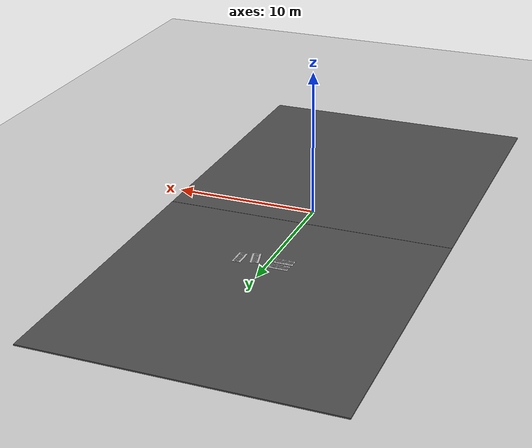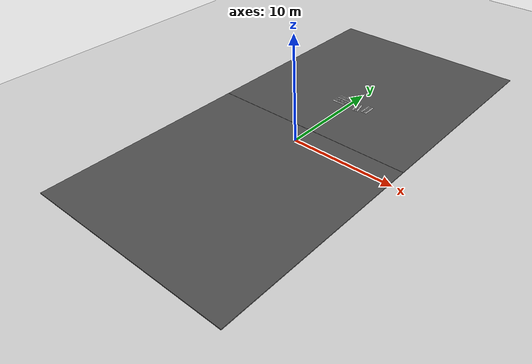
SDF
<sdf version="1.6">
 <world name="default">
  <model name="ground_plane">
   <static>1</static>
   <link name="link">
    <collision name="collision">
     <geometry><plane><normal>0 0 1</normal><size>100 100</size></plane></geometry>
     <surface>
      <contact><collide_bitmask>65535</collide_bitmask></contact>
      <friction><ode><mu>100</mu><mu2>50</mu2></ode></friction>
     </surface>
    </collision>
    <visual name="visual">
     <cast_shadows>0</cast_shadows>
     <geometry><plane><normal>0 0 1</normal><size>100 100</size></plane></geometry>
     <material>
      <script><uri>file://media/materials/scripts/gazebo.material</uri><name>Gazebo/Grey</name></script>
     </material>
    </visual>
   </link>
  </model>
  <model name="frc2016_roughterrain_clone_clone_10_clone_1">
   <static>1</static>
   <link name="link">
    <visual name="platform">
     <pose>0 0 0.08269 0 -0 0</pose>
     <geometry><box><size>1.27 0.5969 0.003175</size></box></geometry>
    </visual>
    <collision name="platform">
     <pose>0 0 0.08269 0 -0 0</pose>
     <geometry><box><size>1.27 0.5969 0.003175</size></box></geometry>
    </collision>
    <visual name="row1_block1_sm">
     <pose>0.51435 0.1143 0.09698 0 -0 0</pose>
     <geometry><box><size>0.0762 0.0762 0.0254</size></box></geometry>
    </visual>
    <collision name="row1_block1_sm">
     <pose>0.51435 0.1143 0.09698 0 -0 0</pose>
     <geometry><box><size>0.0762 0.0762 0.0254</size></box></geometry>
    </collision>
    <visual name="row1_block2_lg">
     <pose>0.40005 0.1143 0.12238 0 -0 0</pose>
     <geometry><box><size>0.0762 0.0762 0.0762</size></box></geometry>
    </visual>
    <collision name="row1_block2_lg">
     <pose>0.40005 0.1143 0.12238 0 -0 0</pose>
     <geometry><box><size>0.0762 0.0762 0.0762</size></box></geometry>
    </collision>
    <visual name="row1_block3_md">
     <pose>0.28575 0.1143 0.10968 0 -0 0</pose>
     <geometry><box><size>0.0762 0.0762 0.0508</size></box></geometry>
    </visual>
    <collision name="row1_block3_md">
     <pose>0.28575 0.1143 0.10968 0 -0 0</pose>
     <geometry><box><size>0.0762 0.0762 0.0508</size></box></geometry>
    </collision>
    <visual name="row1_block4_sm">
     <pose>0.17145 0.1143 0.09698 0 -0 0</pose>
     <geometry><box><size>0.0762 0.0762 0.0254</size></box></geometry>
    </visual>
    <collision name="row1_block4_sm">
     <pose>0.17145 0.1143 0.09698 0 -0 0</pose>
     <geometry><box><size>0.0762 0.0762 0.0254</size></box></geometry>
    </collision>
    <visual name="row1_block5_md">
     <pose>0.05715 0.1143 0.10968 0 -0 0</pose>
     <geometry><box><size>0.0762 0.0762 0.0508</size></box></geometry>
    </visual>
    <collision name="row1_block5_md">
     <pose>0.05715 0.1143 0.10968 0 -0 0</pose>
     <geometry><box><size>0.0762 0.0762 0.0508</size></box></geometry>
    </collision>
    <visual name="row1_block6_lg">
     <pose>-0.05715 0.1143 0.12238 0 -0 0</pose>
     <geometry><box><size>0.0762 0.0762 0.0762</size></box></geometry>
    </visual>
    <collision name="row1_block6_lg">
     <pose>-0.05715 0.1143 0.12238 0 -0 0</pose>
     <geometry><box><size>0.0762 0.0762 0.0762</size></box></geometry>
    </collision>
    <visual name="row1_block7_sm">
     <pose>-0.17145 0.1143 0.09698 0 -0 0</pose>
     <geometry><box><size>0.0762 0.0762 0.0254</size></box></geometry>
    </visual>
    <collision name="row1_block7_sm">
     <pose>-0.17145 0.1143 0.09698 0 -0 0</pose>
     <geometry><box><size>0.0762 0.0762 0.0254</size></box></geometry>
    </collision>
    <visual name="row1_block8_sm">
     <pose>-0.28575 0.1143 0.09698 0 -0 0</pose>
     <geometry><box><size>0.0762 0.0762 0.0254</size></box></geometry>
    </visual>
    <collision name="row1_block8_sm">
     <pose>-0.28575 0.1143 0.09698 0 -0 0</pose>
     <geometry><box><size>0.0762 0.0762 0.0254</size></box></geometry>
    </collision>
    <visual name="row1_block9_md">
     <pose>-0.40005 0.1143 0.10968 0 -0 0</pose>
     <geometry><box><size>0.0762 0.0762 0.0508</size></box></geometry>
    </visual>
    <collision name="row1_block9_md">
     <pose>-0.40005 0.1143 0.10968 0 -0 0</pose>
     <geometry><box><size>0.0762 0.0762 0.0508</size></box></geometry>
    </collision>
    <visual name="row1_block10_lg">
     <pose>-0.51435 0.1143 0.12238 0 -0 0</pose>
     <geometry><box><size>0.0762 0.0762 0.0762</size></box></geometry>
    </visual>
    <collision name="row1_block10_lg">
     <pose>-0.51435 0.1143 0.12238 0 -0 0</pose>
     <geometry><box><size>0.0762 0.0762 0.0762</size></box></geometry>
    </collision>
    <visual name="row2_block1_md">
     <pose>0.5715 0 0.10968 0 -0 0</pose>
     <geometry><box><size>0.0762 0.0762 0.0508</size></box></geometry>
    </visual>
    <collision name="row2_block1_md">
     <pose>0.5715 0 0.10968 0 -0 0</pose>
     <geometry><box><size>0.0762 0.0762 0.0508</size></box></geometry>
    </collision>
    <visual name="row2_block2_sm">
     <pose>0.4572 0 0.09698 0 -0 0</pose>
     <geometry><box><size>0.0762 0.0762 0.0254</size></box></geometry>
    </visual>
    <collision name="row2_block2_sm">
     <pose>0.4572 0 0.09698 0 -0 0</pose>
     <geometry><box><size>0.0762 0.0762 0.0254</size></box></geometry>
    </collision>
    <visual name="row2_block3_lg">
     <pose>0.3429 0 0.12238 0 -0 0</pose>
     <geometry><box><size>0.0762 0.0762 0.0762</size></box></geometry>
    </visual>
    <collision name="row2_block3_lg">
     <pose>0.3429 0 0.12238 0 -0 0</pose>
     <geometry><box><size>0.0762 0.0762 0.0762</size></box></geometry>
    </collision>
    <visual name="row2_block4_md">
     <pose>0.2286 0 0.10968 0 -0 0</pose>
     <geometry><box><size>0.0762 0.0762 0.0508</size></box></geometry>
    </visual>
    <collision name="row2_block4_md">
     <pose>0.2286 0 0.10968 0 -0 0</pose>
     <geometry><box><size>0.0762 0.0762 0.0508</size></box></geometry>
    </collision>
    <visual name="row2_block5_lg">
     <pose>0.1143 0 0.12238 0 -0 0</pose>
     <geometry><box><size>0.0762 0.0762 0.0762</size></box></geometry>
    </visual>
    <collision name="row2_block5_lg">
     <pose>0.1143 0 0.12238 0 -0 0</pose>
     <geometry><box><size>0.0762 0.0762 0.0762</size></box></geometry>
    </collision>
    <visual name="row2_block6_sm">
     <pose>0 0 0.09698 0 -0 0</pose>
     <geometry><box><size>0.0762 0.0762 0.0254</size></box></geometry>
    </visual>
    <collision name="row2_block6_sm">
     <pose>0 0 0.09698 0 -0 0</pose>
     <geometry><box><size>0.0762 0.0762 0.0254</size></box></geometry>
    </collision>
    <visual name="row2_block7_md">
     <pose>-0.1143 0 0.10968 0 -0 0</pose>
     <geometry><box><size>0.0762 0.0762 0.0508</size></box></geometry>
    </visual>
    <collision name="row2_block7_md">
     <pose>-0.1143 0 0.10968 0 -0 0</pose>
     <geometry><box><size>0.0762 0.0762 0.0508</size></box></geometry>
    </collision>
    <visual name="row2_block8_lg">
     <pose>-0.2286 0 0.12238 0 -0 0</pose>
     <geometry><box><size>0.0762 0.0762 0.0762</size></box></geometry>
    </visual>
    <collision name="row2_block8_lg">
     <pose>-0.2286 0 0.12238 0 -0 0</pose>
     <geometry><box><size>0.0762 0.0762 0.0762</size></box></geometry>
    </collision>
    <visual name="row2_block9_sm">
     <pose>-0.3429 0 0.09698 0 -0 0</pose>
     <geometry><box><size>0.0762 0.0762 0.0254</size></box></geometry>
    </visual>
    <collision name="row2_block9_sm">
     <pose>-0.3429 0 0.09698 0 -0 0</pose>
     <geometry><box><size>0.0762 0.0762 0.0254</size></box></geometry>
    </collision>
    <visual name="row2_block10_lg">
     <pose>-0.4572 0 0.12238 0 -0 0</pose>
     <geometry><box><size>0.0762 0.0762 0.0762</size></box></geometry>
    </visual>
    <collision name="row2_block10_lg">
     <pose>-0.4572 0 0.12238 0 -0 0</pose>
     <geometry><box><size>0.0762 0.0762 0.0762</size></box></geometry>
    </collision>
    <visual name="row2_block11_md">
     <pose>-0.5715 0 0.10968 0 -0 0</pose>
     <geometry><box><size>0.0762 0.0762 0.0508</size></box></geometry>
    </visual>
    <collision name="row2_block11_md">
     <pose>-0.5715 0 0.10968 0 -0 0</pose>
     <geometry><box><size>0.0762 0.0762 0.0508</size></box></geometry>
    </collision>
    <visual name="row3_block1_lg">
     <pose>0.51435 -0.1143 0.12238 0 -0 0</pose>
     <geometry><box><size>0.0762 0.0762 0.0762</size></box></geometry>
    </visual>
    <collision name="row3_block1_lg">
     <pose>0.51435 -0.1143 0.12238 0 -0 0</pose>
     <geometry><box><size>0.0762 0.0762 0.0762</size></box></geometry>
    </collision>
    <visual name="row3_block2_md">
     <pose>0.40005 -0.1143 0.10968 0 -0 0</pose>
     <geometry><box><size>0.0762 0.0762 0.0508</size></box></geometry>
    </visual>
    <collision name="row3_block2_md">
     <pose>0.40005 -0.1143 0.10968 0 -0 0</pose>
     <geometry><box><size>0.0762 0.0762 0.0508</size></box></geometry>
    </collision>
    <visual name="row3_block3_lg">
     <pose>0.28575 -0.1143 0.12238 0 -0 0</pose>
     <geometry><box><size>0.0762 0.0762 0.0762</size></box></geometry>
    </visual>
    <collision name="row3_block3_lg">
     <pose>0.28575 -0.1143 0.12238 0 -0 0</pose>
     <geometry><box><size>0.0762 0.0762 0.0762</size></box></geometry>
    </collision>
    <visual name="row3_block4_sm">
     <pose>0.17145 -0.1143 0.09698 0 -0 0</pose>
     <geometry><box><size>0.0762 0.0762 0.0254</size></box></geometry>
    </visual>
    <collision name="row3_block4_sm">
     <pose>0.17145 -0.1143 0.09698 0 -0 0</pose>
     <geometry><box><size>0.0762 0.0762 0.0254</size></box></geometry>
    </collision>
    <visual name="row3_block5_md">
     <pose>0.05715 -0.1143 0.10968 0 -0 0</pose>
     <geometry><box><size>0.0762 0.0762 0.0508</size></box></geometry>
    </visual>
    <collision name="row3_block5_md">
     <pose>0.05715 -0.1143 0.10968 0 -0 0</pose>
     <geometry><box><size>0.0762 0.0762 0.0508</size></box></geometry>
    </collision>
    <visual name="row3_block6_md">
     <pose>-0.05715 -0.1143 0.10968 0 -0 0</pose>
     <geometry><box><size>0.0762 0.0762 0.0508</size></box></geometry>
    </visual>
    <collision name="row3_block6_md">
     <pose>-0.05715 -0.1143 0.10968 0 -0 0</pose>
     <geometry><box><size>0.0762 0.0762 0.0508</size></box></geometry>
    </collision>
    <visual name="row3_block7_lg">
     <pose>-0.17145 -0.1143 0.12238 0 -0 0</pose>
     <geometry><box><size>0.0762 0.0762 0.0762</size></box></geometry>
    </visual>
    <collision name="row3_block7_lg">
     <pose>-0.17145 -0.1143 0.12238 0 -0 0</pose>
     <geometry><box><size>0.0762 0.0762 0.0762</size></box></geometry>
    </collision>
    <visual name="row3_block8_sm">
     <pose>-0.28575 -0.1143 0.09698 0 -0 0</pose>
     <geometry><box><size>0.0762 0.0762 0.0254</size></box></geometry>
    </visual>
    <collision name="row3_block8_sm">
     <pose>-0.28575 -0.1143 0.09698 0 -0 0</pose>
     <geometry><box><size>0.0762 0.0762 0.0254</size></box></geometry>
    </collision>
    <visual name="row3_block9_md">
     <pose>-0.40005 -0.1143 0.10968 0 -0 0</pose>
     <geometry><box><size>0.0762 0.0762 0.0508</size></box></geometry>
    </visual>
    <collision name="row3_block9_md">
     <pose>-0.40005 -0.1143 0.10968 0 -0 0</pose>
     <geometry><box><size>0.0762 0.0762 0.0508</size></box></geometry>
    </collision>
    <visual name="row3_block10_sm">
     <pose>-0.51435 -0.1143 0.09698 0 -0 0</pose>
     <geometry><box><size>0.0762 0.0762 0.0254</size></box></geometry>
    </visual>
    <collision name="row3_block10_sm">
     <pose>-0.51435 -0.1143 0.09698 0 -0 0</pose>
     <geometry><box><size>0.0762 0.0762 0.0254</size></box></geometry>
    </collision>
   </link>
   <pose>1.93778 8.04967 0 0 -0 1.57</pose>
  </model>
  <model name="frc2016_roughterrain_clone_clone_12_clone_clone_clone_clone_0">
   <static>1</static>
   <link name="link">
    <visual name="platform">
     <pose>0 0 0.08269 0 -0 0</pose>
     <geometry><box><size>1.27 0.5969 0.003175</size></box></geometry>
    </visual>
    <collision name="platform">
     <pose>0 0 0.08269 0 -0 0</pose>
     <geometry><box><size>1.27 0.5969 0.003175</size></box></geometry>
    </collision>
    <visual name="row1_block1_sm">
     <pose>0.51435 0.1143 0.09698 0 -0 0</pose>
     <geometry><box><size>0.0762 0.0762 0.0254</size></box></geometry>
    </visual>
    <collision name="row1_block1_sm">
     <pose>0.51435 0.1143 0.09698 0 -0 0</pose>
     <geometry><box><size>0.0762 0.0762 0.0254</size></box></geometry>
    </collision>
    <visual name="row1_block2_lg">
     <pose>0.40005 0.1143 0.12238 0 -0 0</pose>
     <geometry><box><size>0.0762 0.0762 0.0762</size></box></geometry>
    </visual>
    <collision name="row1_block2_lg">
     <pose>0.40005 0.1143 0.12238 0 -0 0</pose>
     <geometry><box><size>0.0762 0.0762 0.0762</size></box></geometry>
    </collision>
    <visual name="row1_block3_md">
     <pose>0.28575 0.1143 0.10968 0 -0 0</pose>
     <geometry><box><size>0.0762 0.0762 0.0508</size></box></geometry>
    </visual>
    <collision name="row1_block3_md">
     <pose>0.28575 0.1143 0.10968 0 -0 0</pose>
     <geometry><box><size>0.0762 0.0762 0.0508</size></box></geometry>
    </collision>
    <visual name="row1_block4_sm">
     <pose>0.17145 0.1143 0.09698 0 -0 0</pose>
     <geometry><box><size>0.0762 0.0762 0.0254</size></box></geometry>
    </visual>
    <collision name="row1_block4_sm">
     <pose>0.17145 0.1143 0.09698 0 -0 0</pose>
     <geometry><box><size>0.0762 0.0762 0.0254</size></box></geometry>
    </collision>
    <visual name="row1_block5_md">
     <pose>0.05715 0.1143 0.10968 0 -0 0</pose>
     <geometry><box><size>0.0762 0.0762 0.0508</size></box></geometry>
    </visual>
    <collision name="row1_block5_md">
     <pose>0.05715 0.1143 0.10968 0 -0 0</pose>
     <geometry><box><size>0.0762 0.0762 0.0508</size></box></geometry>
    </collision>
    <visual name="row1_block6_lg">
     <pose>-0.05715 0.1143 0.12238 0 -0 0</pose>
     <geometry><box><size>0.0762 0.0762 0.0762</size></box></geometry>
    </visual>
    <collision name="row1_block6_lg">
     <pose>-0.05715 0.1143 0.12238 0 -0 0</pose>
     <geometry><box><size>0.0762 0.0762 0.0762</size></box></geometry>
    </collision>
    <visual name="row1_block7_sm">
     <pose>-0.17145 0.1143 0.09698 0 -0 0</pose>
     <geometry><box><size>0.0762 0.0762 0.0254</size></box></geometry>
    </visual>
    <collision name="row1_block7_sm">
     <pose>-0.17145 0.1143 0.09698 0 -0 0</pose>
     <geometry><box><size>0.0762 0.0762 0.0254</size></box></geometry>
    </collision>
    <visual name="row1_block8_sm">
     <pose>-0.28575 0.1143 0.09698 0 -0 0</pose>
     <geometry><box><size>0.0762 0.0762 0.0254</size></box></geometry>
    </visual>
    <collision name="row1_block8_sm">
     <pose>-0.28575 0.1143 0.09698 0 -0 0</pose>
     <geometry><box><size>0.0762 0.0762 0.0254</size></box></geometry>
    </collision>
    <visual name="row1_block9_md">
     <pose>-0.40005 0.1143 0.10968 0 -0 0</pose>
     <geometry><box><size>0.0762 0.0762 0.0508</size></box></geometry>
    </visual>
    <collision name="row1_block9_md">
     <pose>-0.40005 0.1143 0.10968 0 -0 0</pose>
     <geometry><box><size>0.0762 0.0762 0.0508</size></box></geometry>
    </collision>
    <visual name="row1_block10_lg">
     <pose>-0.51435 0.1143 0.12238 0 -0 0</pose>
     <geometry><box><size>0.0762 0.0762 0.0762</size></box></geometry>
    </visual>
    <collision name="row1_block10_lg">
     <pose>-0.51435 0.1143 0.12238 0 -0 0</pose>
     <geometry><box><size>0.0762 0.0762 0.0762</size></box></geometry>
    </collision>
    <visual name="row2_block1_md">
     <pose>0.5715 0 0.10968 0 -0 0</pose>
     <geometry><box><size>0.0762 0.0762 0.0508</size></box></geometry>
    </visual>
    <collision name="row2_block1_md">
     <pose>0.5715 0 0.10968 0 -0 0</pose>
     <geometry><box><size>0.0762 0.0762 0.0508</size></box></geometry>
    </collision>
    <visual name="row2_block2_sm">
     <pose>0.4572 0 0.09698 0 -0 0</pose>
     <geometry><box><size>0.0762 0.0762 0.0254</size></box></geometry>
    </visual>
    <collision name="row2_block2_sm">
     <pose>0.4572 0 0.09698 0 -0 0</pose>
     <geometry><box><size>0.0762 0.0762 0.0254</size></box></geometry>
    </collision>
    <visual name="row2_block3_lg">
     <pose>0.3429 0 0.12238 0 -0 0</pose>
     <geometry><box><size>0.0762 0.0762 0.0762</size></box></geometry>
    </visual>
    <collision name="row2_block3_lg">
     <pose>0.3429 0 0.12238 0 -0 0</pose>
     <geometry><box><size>0.0762 0.0762 0.0762</size></box></geometry>
    </collision>
    <visual name="row2_block4_md">
     <pose>0.2286 0 0.10968 0 -0 0</pose>
     <geometry><box><size>0.0762 0.0762 0.0508</size></box></geometry>
    </visual>
    <collision name="row2_block4_md">
     <pose>0.2286 0 0.10968 0 -0 0</pose>
     <geometry><box><size>0.0762 0.0762 0.0508</size></box></geometry>
    </collision>
    <visual name="row2_block5_lg">
     <pose>0.1143 0 0.12238 0 -0 0</pose>
     <geometry><box><size>0.0762 0.0762 0.0762</size></box></geometry>
    </visual>
    <collision name="row2_block5_lg">
     <pose>0.1143 0 0.12238 0 -0 0</pose>
     <geometry><box><size>0.0762 0.0762 0.0762</size></box></geometry>
    </collision>
    <visual name="row2_block6_sm">
     <pose>0 0 0.09698 0 -0 0</pose>
     <geometry><box><size>0.0762 0.0762 0.0254</size></box></geometry>
    </visual>
    <collision name="row2_block6_sm">
     <pose>0 0 0.09698 0 -0 0</pose>
     <geometry><box><size>0.0762 0.0762 0.0254</size></box></geometry>
    </collision>
    <visual name="row2_block7_md">
     <pose>-0.1143 0 0.10968 0 -0 0</pose>
     <geometry><box><size>0.0762 0.0762 0.0508</size></box></geometry>
    </visual>
    <collision name="row2_block7_md">
     <pose>-0.1143 0 0.10968 0 -0 0</pose>
     <geometry><box><size>0.0762 0.0762 0.0508</size></box></geometry>
    </collision>
    <visual name="row2_block8_lg">
     <pose>-0.2286 0 0.12238 0 -0 0</pose>
     <geometry><box><size>0.0762 0.0762 0.0762</size></box></geometry>
    </visual>
    <collision name="row2_block8_lg">
     <pose>-0.2286 0 0.12238 0 -0 0</pose>
     <geometry><box><size>0.0762 0.0762 0.0762</size></box></geometry>
    </collision>
    <visual name="row2_block9_sm">
     <pose>-0.3429 0 0.09698 0 -0 0</pose>
     <geometry><box><size>0.0762 0.0762 0.0254</size></box></geometry>
    </visual>
    <collision name="row2_block9_sm">
     <pose>-0.3429 0 0.09698 0 -0 0</pose>
     <geometry><box><size>0.0762 0.0762 0.0254</size></box></geometry>
    </collision>
    <visual name="row2_block10_lg">
     <pose>-0.4572 0 0.12238 0 -0 0</pose>
     <geometry><box><size>0.0762 0.0762 0.0762</size></box></geometry>
    </visual>
    <collision name="row2_block10_lg">
     <pose>-0.4572 0 0.12238 0 -0 0</pose>
     <geometry><box><size>0.0762 0.0762 0.0762</size></box></geometry>
    </collision>
    <visual name="row2_block11_md">
     <pose>-0.5715 0 0.10968 0 -0 0</pose>
     <geometry><box><size>0.0762 0.0762 0.0508</size></box></geometry>
    </visual>
    <collision name="row2_block11_md">
     <pose>-0.5715 0 0.10968 0 -0 0</pose>
     <geometry><box><size>0.0762 0.0762 0.0508</size></box></geometry>
    </collision>
    <visual name="row3_block1_lg">
     <pose>0.51435 -0.1143 0.12238 0 -0 0</pose>
     <geometry><box><size>0.0762 0.0762 0.0762</size></box></geometry>
    </visual>
    <collision name="row3_block1_lg">
     <pose>0.51435 -0.1143 0.12238 0 -0 0</pose>
     <geometry><box><size>0.0762 0.0762 0.0762</size></box></geometry>
    </collision>
    <visual name="row3_block2_md">
     <pose>0.40005 -0.1143 0.10968 0 -0 0</pose>
     <geometry><box><size>0.0762 0.0762 0.0508</size></box></geometry>
    </visual>
    <collision name="row3_block2_md">
     <pose>0.40005 -0.1143 0.10968 0 -0 0</pose>
     <geometry><box><size>0.0762 0.0762 0.0508</size></box></geometry>
    </collision>
    <visual name="row3_block3_lg">
     <pose>0.28575 -0.1143 0.12238 0 -0 0</pose>
     <geometry><box><size>0.0762 0.0762 0.0762</size></box></geometry>
    </visual>
    <collision name="row3_block3_lg">
     <pose>0.28575 -0.1143 0.12238 0 -0 0</pose>
     <geometry><box><size>0.0762 0.0762 0.0762</size></box></geometry>
    </collision>
    <visual name="row3_block4_sm">
     <pose>0.17145 -0.1143 0.09698 0 -0 0</pose>
     <geometry><box><size>0.0762 0.0762 0.0254</size></box></geometry>
    </visual>
    <collision name="row3_block4_sm">
     <pose>0.17145 -0.1143 0.09698 0 -0 0</pose>
     <geometry><box><size>0.0762 0.0762 0.0254</size></box></geometry>
    </collision>
    <visual name="row3_block5_md">
     <pose>0.05715 -0.1143 0.10968 0 -0 0</pose>
     <geometry><box><size>0.0762 0.0762 0.0508</size></box></geometry>
    </visual>
    <collision name="row3_block5_md">
     <pose>0.05715 -0.1143 0.10968 0 -0 0</pose>
     <geometry><box><size>0.0762 0.0762 0.0508</size></box></geometry>
    </collision>
    <visual name="row3_block6_md">
     <pose>-0.05715 -0.1143 0.10968 0 -0 0</pose>
     <geometry><box><size>0.0762 0.0762 0.0508</size></box></geometry>
    </visual>
    <collision name="row3_block6_md">
     <pose>-0.05715 -0.1143 0.10968 0 -0 0</pose>
     <geometry><box><size>0.0762 0.0762 0.0508</size></box></geometry>
    </collision>
    <visual name="row3_block7_lg">
     <pose>-0.17145 -0.1143 0.12238 0 -0 0</pose>
     <geometry><box><size>0.0762 0.0762 0.0762</size></box></geometry>
    </visual>
    <collision name="row3_block7_lg">
     <pose>-0.17145 -0.1143 0.12238 0 -0 0</pose>
     <geometry><box><size>0.0762 0.0762 0.0762</size></box></geometry>
    </collision>
    <visual name="row3_block8_sm">
     <pose>-0.28575 -0.1143 0.09698 0 -0 0</pose>
     <geometry><box><size>0.0762 0.0762 0.0254</size></box></geometry>
    </visual>
    <collision name="row3_block8_sm">
     <pose>-0.28575 -0.1143 0.09698 0 -0 0</pose>
     <geometry><box><size>0.0762 0.0762 0.0254</size></box></geometry>
    </collision>
    <visual name="row3_block9_md">
     <pose>-0.40005 -0.1143 0.10968 0 -0 0</pose>
     <geometry><box><size>0.0762 0.0762 0.0508</size></box></geometry>
    </visual>
    <collision name="row3_block9_md">
     <pose>-0.40005 -0.1143 0.10968 0 -0 0</pose>
     <geometry><box><size>0.0762 0.0762 0.0508</size></box></geometry>
    </collision>
    <visual name="row3_block10_sm">
     <pose>-0.51435 -0.1143 0.09698 0 -0 0</pose>
     <geometry><box><size>0.0762 0.0762 0.0254</size></box></geometry>
    </visual>
    <collision name="row3_block10_sm">
     <pose>-0.51435 -0.1143 0.09698 0 -0 0</pose>
     <geometry><box><size>0.0762 0.0762 0.0254</size></box></geometry>
    </collision>
   </link>
   <pose>0.972413 7.79085 0 0 -0 1.82</pose>
  </model>
  <model name="frc2016_roughterrain_clone_clone_12_clone_clone_clone_clone_clone_clone">
   <static>1</static>
   <link name="link">
    <visual name="platform">
     <pose>0 0 0.08269 0 -0 0</pose>
     <geometry><box><size>1.27 0.5969 0.003175</size></box></geometry>
    </visual>
    <collision name="platform">
     <pose>0 0 0.08269 0 -0 0</pose>
     <geometry><box><size>1.27 0.5969 0.003175</size></box></geometry>
    </collision>
    <visual name="row1_block1_sm">
     <pose>0.51435 0.1143 0.09698 0 -0 0</pose>
     <geometry><box><size>0.0762 0.0762 0.0254</size></box></geometry>
    </visual>
    <collision name="row1_block1_sm">
     <pose>0.51435 0.1143 0.09698 0 -0 0</pose>
     <geometry><box><size>0.0762 0.0762 0.0254</size></box></geometry>
    </collision>
    <visual name="row1_block2_lg">
     <pose>0.40005 0.1143 0.12238 0 -0 0</pose>
     <geometry><box><size>0.0762 0.0762 0.0762</size></box></geometry>
    </visual>
    <collision name="row1_block2_lg">
     <pose>0.40005 0.1143 0.12238 0 -0 0</pose>
     <geometry><box><size>0.0762 0.0762 0.0762</size></box></geometry>
    </collision>
    <visual name="row1_block3_md">
     <pose>0.28575 0.1143 0.10968 0 -0 0</pose>
     <geometry><box><size>0.0762 0.0762 0.0508</size></box></geometry>
    </visual>
    <collision name="row1_block3_md">
     <pose>0.28575 0.1143 0.10968 0 -0 0</pose>
     <geometry><box><size>0.0762 0.0762 0.0508</size></box></geometry>
    </collision>
    <visual name="row1_block4_sm">
     <pose>0.17145 0.1143 0.09698 0 -0 0</pose>
     <geometry><box><size>0.0762 0.0762 0.0254</size></box></geometry>
    </visual>
    <collision name="row1_block4_sm">
     <pose>0.17145 0.1143 0.09698 0 -0 0</pose>
     <geometry><box><size>0.0762 0.0762 0.0254</size></box></geometry>
    </collision>
    <visual name="row1_block5_md">
     <pose>0.05715 0.1143 0.10968 0 -0 0</pose>
     <geometry><box><size>0.0762 0.0762 0.0508</size></box></geometry>
    </visual>
    <collision name="row1_block5_md">
     <pose>0.05715 0.1143 0.10968 0 -0 0</pose>
     <geometry><box><size>0.0762 0.0762 0.0508</size></box></geometry>
    </collision>
    <visual name="row1_block6_lg">
     <pose>-0.05715 0.1143 0.12238 0 -0 0</pose>
     <geometry><box><size>0.0762 0.0762 0.0762</size></box></geometry>
    </visual>
    <collision name="row1_block6_lg">
     <pose>-0.05715 0.1143 0.12238 0 -0 0</pose>
     <geometry><box><size>0.0762 0.0762 0.0762</size></box></geometry>
    </collision>
    <visual name="row1_block7_sm">
     <pose>-0.17145 0.1143 0.09698 0 -0 0</pose>
     <geometry><box><size>0.0762 0.0762 0.0254</size></box></geometry>
    </visual>
    <collision name="row1_block7_sm">
     <pose>-0.17145 0.1143 0.09698 0 -0 0</pose>
     <geometry><box><size>0.0762 0.0762 0.0254</size></box></geometry>
    </collision>
    <visual name="row1_block8_sm">
     <pose>-0.28575 0.1143 0.09698 0 -0 0</pose>
     <geometry><box><size>0.0762 0.0762 0.0254</size></box></geometry>
    </visual>
    <collision name="row1_block8_sm">
     <pose>-0.28575 0.1143 0.09698 0 -0 0</pose>
     <geometry><box><size>0.0762 0.0762 0.0254</size></box></geometry>
    </collision>
    <visual name="row1_block9_md">
     <pose>-0.40005 0.1143 0.10968 0 -0 0</pose>
     <geometry><box><size>0.0762 0.0762 0.0508</size></box></geometry>
    </visual>
    <collision name="row1_block9_md">
     <pose>-0.40005 0.1143 0.10968 0 -0 0</pose>
     <geometry><box><size>0.0762 0.0762 0.0508</size></box></geometry>
    </collision>
    <visual name="row1_block10_lg">
     <pose>-0.51435 0.1143 0.12238 0 -0 0</pose>
     <geometry><box><size>0.0762 0.0762 0.0762</size></box></geometry>
    </visual>
    <collision name="row1_block10_lg">
     <pose>-0.51435 0.1143 0.12238 0 -0 0</pose>
     <geometry><box><size>0.0762 0.0762 0.0762</size></box></geometry>
    </collision>
    <visual name="row2_block1_md">
     <pose>0.5715 0 0.10968 0 -0 0</pose>
     <geometry><box><size>0.0762 0.0762 0.0508</size></box></geometry>
    </visual>
    <collision name="row2_block1_md">
     <pose>0.5715 0 0.10968 0 -0 0</pose>
     <geometry><box><size>0.0762 0.0762 0.0508</size></box></geometry>
    </collision>
    <visual name="row2_block2_sm">
     <pose>0.4572 0 0.09698 0 -0 0</pose>
     <geometry><box><size>0.0762 0.0762 0.0254</size></box></geometry>
    </visual>
    <collision name="row2_block2_sm">
     <pose>0.4572 0 0.09698 0 -0 0</pose>
     <geometry><box><size>0.0762 0.0762 0.0254</size></box></geometry>
    </collision>
    <visual name="row2_block3_lg">
     <pose>0.3429 0 0.12238 0 -0 0</pose>
     <geometry><box><size>0.0762 0.0762 0.0762</size></box></geometry>
    </visual>
    <collision name="row2_block3_lg">
     <pose>0.3429 0 0.12238 0 -0 0</pose>
     <geometry><box><size>0.0762 0.0762 0.0762</size></box></geometry>
    </collision>
    <visual name="row2_block4_md">
     <pose>0.2286 0 0.10968 0 -0 0</pose>
     <geometry><box><size>0.0762 0.0762 0.0508</size></box></geometry>
    </visual>
    <collision name="row2_block4_md">
     <pose>0.2286 0 0.10968 0 -0 0</pose>
     <geometry><box><size>0.0762 0.0762 0.0508</size></box></geometry>
    </collision>
    <visual name="row2_block5_lg">
     <pose>0.1143 0 0.12238 0 -0 0</pose>
     <geometry><box><size>0.0762 0.0762 0.0762</size></box></geometry>
    </visual>
    <collision name="row2_block5_lg">
     <pose>0.1143 0 0.12238 0 -0 0</pose>
     <geometry><box><size>0.0762 0.0762 0.0762</size></box></geometry>
    </collision>
    <visual name="row2_block6_sm">
     <pose>0 0 0.09698 0 -0 0</pose>
     <geometry><box><size>0.0762 0.0762 0.0254</size></box></geometry>
    </visual>
    <collision name="row2_block6_sm">
     <pose>0 0 0.09698 0 -0 0</pose>
     <geometry><box><size>0.0762 0.0762 0.0254</size></box></geometry>
    </collision>
    <visual name="row2_block7_md">
     <pose>-0.1143 0 0.10968 0 -0 0</pose>
     <geometry><box><size>0.0762 0.0762 0.0508</size></box></geometry>
    </visual>
    <collision name="row2_block7_md">
     <pose>-0.1143 0 0.10968 0 -0 0</pose>
     <geometry><box><size>0.0762 0.0762 0.0508</size></box></geometry>
    </collision>
    <visual name="row2_block8_lg">
     <pose>-0.2286 0 0.12238 0 -0 0</pose>
     <geometry><box><size>0.0762 0.0762 0.0762</size></box></geometry>
    </visual>
    <collision name="row2_block8_lg">
     <pose>-0.2286 0 0.12238 0 -0 0</pose>
     <geometry><box><size>0.0762 0.0762 0.0762</size></box></geometry>
    </collision>
    <visual name="row2_block9_sm">
     <pose>-0.3429 0 0.09698 0 -0 0</pose>
     <geometry><box><size>0.0762 0.0762 0.0254</size></box></geometry>
    </visual>
    <collision name="row2_block9_sm">
     <pose>-0.3429 0 0.09698 0 -0 0</pose>
     <geometry><box><size>0.0762 0.0762 0.0254</size></box></geometry>
    </collision>
    <visual name="row2_block10_lg">
     <pose>-0.4572 0 0.12238 0 -0 0</pose>
     <geometry><box><size>0.0762 0.0762 0.0762</size></box></geometry>
    </visual>
    <collision name="row2_block10_lg">
     <pose>-0.4572 0 0.12238 0 -0 0</pose>
     <geometry><box><size>0.0762 0.0762 0.0762</size></box></geometry>
    </collision>
    <visual name="row2_block11_md">
     <pose>-0.5715 0 0.10968 0 -0 0</pose>
     <geometry><box><size>0.0762 0.0762 0.0508</size></box></geometry>
    </visual>
    <collision name="row2_block11_md">
     <pose>-0.5715 0 0.10968 0 -0 0</pose>
     <geometry><box><size>0.0762 0.0762 0.0508</size></box></geometry>
    </collision>
    <visual name="row3_block1_lg">
     <pose>0.51435 -0.1143 0.12238 0 -0 0</pose>
     <geometry><box><size>0.0762 0.0762 0.0762</size></box></geometry>
    </visual>
    <collision name="row3_block1_lg">
     <pose>0.51435 -0.1143 0.12238 0 -0 0</pose>
     <geometry><box><size>0.0762 0.0762 0.0762</size></box></geometry>
    </collision>
    <visual name="row3_block2_md">
     <pose>0.40005 -0.1143 0.10968 0 -0 0</pose>
     <geometry><box><size>0.0762 0.0762 0.0508</size></box></geometry>
    </visual>
    <collision name="row3_block2_md">
     <pose>0.40005 -0.1143 0.10968 0 -0 0</pose>
     <geometry><box><size>0.0762 0.0762 0.0508</size></box></geometry>
    </collision>
    <visual name="row3_block3_lg">
     <pose>0.28575 -0.1143 0.12238 0 -0 0</pose>
     <geometry><box><size>0.0762 0.0762 0.0762</size></box></geometry>
    </visual>
    <collision name="row3_block3_lg">
     <pose>0.28575 -0.1143 0.12238 0 -0 0</pose>
     <geometry><box><size>0.0762 0.0762 0.0762</size></box></geometry>
    </collision>
    <visual name="row3_block4_sm">
     <pose>0.17145 -0.1143 0.09698 0 -0 0</pose>
     <geometry><box><size>0.0762 0.0762 0.0254</size></box></geometry>
    </visual>
    <collision name="row3_block4_sm">
     <pose>0.17145 -0.1143 0.09698 0 -0 0</pose>
     <geometry><box><size>0.0762 0.0762 0.0254</size></box></geometry>
    </collision>
    <visual name="row3_block5_md">
     <pose>0.05715 -0.1143 0.10968 0 -0 0</pose>
     <geometry><box><size>0.0762 0.0762 0.0508</size></box></geometry>
    </visual>
    <collision name="row3_block5_md">
     <pose>0.05715 -0.1143 0.10968 0 -0 0</pose>
     <geometry><box><size>0.0762 0.0762 0.0508</size></box></geometry>
    </collision>
    <visual name="row3_block6_md">
     <pose>-0.05715 -0.1143 0.10968 0 -0 0</pose>
     <geometry><box><size>0.0762 0.0762 0.0508</size></box></geometry>
    </visual>
    <collision name="row3_block6_md">
     <pose>-0.05715 -0.1143 0.10968 0 -0 0</pose>
     <geometry><box><size>0.0762 0.0762 0.0508</size></box></geometry>
    </collision>
    <visual name="row3_block7_lg">
     <pose>-0.17145 -0.1143 0.12238 0 -0 0</pose>
     <geometry><box><size>0.0762 0.0762 0.0762</size></box></geometry>
    </visual>
    <collision name="row3_block7_lg">
     <pose>-0.17145 -0.1143 0.12238 0 -0 0</pose>
     <geometry><box><size>0.0762 0.0762 0.0762</size></box></geometry>
    </collision>
    <visual name="row3_block8_sm">
     <pose>-0.28575 -0.1143 0.09698 0 -0 0</pose>
     <geometry><box><size>0.0762 0.0762 0.0254</size></box></geometry>
    </visual>
    <collision name="row3_block8_sm">
     <pose>-0.28575 -0.1143 0.09698 0 -0 0</pose>
     <geometry><box><size>0.0762 0.0762 0.0254</size></box></geometry>
    </collision>
    <visual name="row3_block9_md">
     <pose>-0.40005 -0.1143 0.10968 0 -0 0</pose>
     <geometry><box><size>0.0762 0.0762 0.0508</size></box></geometry>
    </visual>
    <collision name="row3_block9_md">
     <pose>-0.40005 -0.1143 0.10968 0 -0 0</pose>
     <geometry><box><size>0.0762 0.0762 0.0508</size></box></geometry>
    </collision>
    <visual name="row3_block10_sm">
     <pose>-0.51435 -0.1143 0.09698 0 -0 0</pose>
     <geometry><box><size>0.0762 0.0762 0.0254</size></box></geometry>
    </visual>
    <collision name="row3_block10_sm">
     <pose>-0.51435 -0.1143 0.09698 0 -0 0</pose>
     <geometry><box><size>0.0762 0.0762 0.0254</size></box></geometry>
    </collision>
   </link>
   <pose>-0.959623 7.66522 0 0 -0 0</pose>
  </model>
  <model name="frc2016_roughterrain_clone_clone_12_clone_clone_clone_clone_clone_clone_0">
   <static>1</static>
   <link name="link">
    <visual name="platform">
     <pose>0 0 0.08269 0 -0 0</pose>
     <geometry><box><size>1.27 0.5969 0.003175</size></box></geometry>
    </visual>
    <collision name="platform">
     <pose>0 0 0.08269 0 -0 0</pose>
     <geometry><box><size>1.27 0.5969 0.003175</size></box></geometry>
    </collision>
    <visual name="row1_block1_sm">
     <pose>0.51435 0.1143 0.09698 0 -0 0</pose>
     <geometry><box><size>0.0762 0.0762 0.0254</size></box></geometry>
    </visual>
    <collision name="row1_block1_sm">
     <pose>0.51435 0.1143 0.09698 0 -0 0</pose>
     <geometry><box><size>0.0762 0.0762 0.0254</size></box></geometry>
    </collision>
    <visual name="row1_block2_lg">
     <pose>0.40005 0.1143 0.12238 0 -0 0</pose>
     <geometry><box><size>0.0762 0.0762 0.0762</size></box></geometry>
    </visual>
    <collision name="row1_block2_lg">
     <pose>0.40005 0.1143 0.12238 0 -0 0</pose>
     <geometry><box><size>0.0762 0.0762 0.0762</size></box></geometry>
    </collision>
    <visual name="row1_block3_md">
     <pose>0.28575 0.1143 0.10968 0 -0 0</pose>
     <geometry><box><size>0.0762 0.0762 0.0508</size></box></geometry>
    </visual>
    <collision name="row1_block3_md">
     <pose>0.28575 0.1143 0.10968 0 -0 0</pose>
     <geometry><box><size>0.0762 0.0762 0.0508</size></box></geometry>
    </collision>
    <visual name="row1_block4_sm">
     <pose>0.17145 0.1143 0.09698 0 -0 0</pose>
     <geometry><box><size>0.0762 0.0762 0.0254</size></box></geometry>
    </visual>
    <collision name="row1_block4_sm">
     <pose>0.17145 0.1143 0.09698 0 -0 0</pose>
     <geometry><box><size>0.0762 0.0762 0.0254</size></box></geometry>
    </collision>
    <visual name="row1_block5_md">
     <pose>0.05715 0.1143 0.10968 0 -0 0</pose>
     <geometry><box><size>0.0762 0.0762 0.0508</size></box></geometry>
    </visual>
    <collision name="row1_block5_md">
     <pose>0.05715 0.1143 0.10968 0 -0 0</pose>
     <geometry><box><size>0.0762 0.0762 0.0508</size></box></geometry>
    </collision>
    <visual name="row1_block6_lg">
     <pose>-0.05715 0.1143 0.12238 0 -0 0</pose>
     <geometry><box><size>0.0762 0.0762 0.0762</size></box></geometry>
    </visual>
    <collision name="row1_block6_lg">
     <pose>-0.05715 0.1143 0.12238 0 -0 0</pose>
     <geometry><box><size>0.0762 0.0762 0.0762</size></box></geometry>
    </collision>
    <visual name="row1_block7_sm">
     <pose>-0.17145 0.1143 0.09698 0 -0 0</pose>
     <geometry><box><size>0.0762 0.0762 0.0254</size></box></geometry>
    </visual>
    <collision name="row1_block7_sm">
     <pose>-0.17145 0.1143 0.09698 0 -0 0</pose>
     <geometry><box><size>0.0762 0.0762 0.0254</size></box></geometry>
    </collision>
    <visual name="row1_block8_sm">
     <pose>-0.28575 0.1143 0.09698 0 -0 0</pose>
     <geometry><box><size>0.0762 0.0762 0.0254</size></box></geometry>
    </visual>
    <collision name="row1_block8_sm">
     <pose>-0.28575 0.1143 0.09698 0 -0 0</pose>
     <geometry><box><size>0.0762 0.0762 0.0254</size></box></geometry>
    </collision>
    <visual name="row1_block9_md">
     <pose>-0.40005 0.1143 0.10968 0 -0 0</pose>
     <geometry><box><size>0.0762 0.0762 0.0508</size></box></geometry>
    </visual>
    <collision name="row1_block9_md">
     <pose>-0.40005 0.1143 0.10968 0 -0 0</pose>
     <geometry><box><size>0.0762 0.0762 0.0508</size></box></geometry>
    </collision>
    <visual name="row1_block10_lg">
     <pose>-0.51435 0.1143 0.12238 0 -0 0</pose>
     <geometry><box><size>0.0762 0.0762 0.0762</size></box></geometry>
    </visual>
    <collision name="row1_block10_lg">
     <pose>-0.51435 0.1143 0.12238 0 -0 0</pose>
     <geometry><box><size>0.0762 0.0762 0.0762</size></box></geometry>
    </collision>
    <visual name="row2_block1_md">
     <pose>0.5715 0 0.10968 0 -0 0</pose>
     <geometry><box><size>0.0762 0.0762 0.0508</size></box></geometry>
    </visual>
    <collision name="row2_block1_md">
     <pose>0.5715 0 0.10968 0 -0 0</pose>
     <geometry><box><size>0.0762 0.0762 0.0508</size></box></geometry>
    </collision>
    <visual name="row2_block2_sm">
     <pose>0.4572 0 0.09698 0 -0 0</pose>
     <geometry><box><size>0.0762 0.0762 0.0254</size></box></geometry>
    </visual>
    <collision name="row2_block2_sm">
     <pose>0.4572 0 0.09698 0 -0 0</pose>
     <geometry><box><size>0.0762 0.0762 0.0254</size></box></geometry>
    </collision>
    <visual name="row2_block3_lg">
     <pose>0.3429 0 0.12238 0 -0 0</pose>
     <geometry><box><size>0.0762 0.0762 0.0762</size></box></geometry>
    </visual>
    <collision name="row2_block3_lg">
     <pose>0.3429 0 0.12238 0 -0 0</pose>
     <geometry><box><size>0.0762 0.0762 0.0762</size></box></geometry>
    </collision>
    <visual name="row2_block4_md">
     <pose>0.2286 0 0.10968 0 -0 0</pose>
     <geometry><box><size>0.0762 0.0762 0.0508</size></box></geometry>
    </visual>
    <collision name="row2_block4_md">
     <pose>0.2286 0 0.10968 0 -0 0</pose>
     <geometry><box><size>0.0762 0.0762 0.0508</size></box></geometry>
    </collision>
    <visual name="row2_block5_lg">
     <pose>0.1143 0 0.12238 0 -0 0</pose>
     <geometry><box><size>0.0762 0.0762 0.0762</size></box></geometry>
    </visual>
    <collision name="row2_block5_lg">
     <pose>0.1143 0 0.12238 0 -0 0</pose>
     <geometry><box><size>0.0762 0.0762 0.0762</size></box></geometry>
    </collision>
    <visual name="row2_block6_sm">
     <pose>0 0 0.09698 0 -0 0</pose>
     <geometry><box><size>0.0762 0.0762 0.0254</size></box></geometry>
    </visual>
    <collision name="row2_block6_sm">
     <pose>0 0 0.09698 0 -0 0</pose>
     <geometry><box><size>0.0762 0.0762 0.0254</size></box></geometry>
    </collision>
    <visual name="row2_block7_md">
     <pose>-0.1143 0 0.10968 0 -0 0</pose>
     <geometry><box><size>0.0762 0.0762 0.0508</size></box></geometry>
    </visual>
    <collision name="row2_block7_md">
     <pose>-0.1143 0 0.10968 0 -0 0</pose>
     <geometry><box><size>0.0762 0.0762 0.0508</size></box></geometry>
    </collision>
    <visual name="row2_block8_lg">
     <pose>-0.2286 0 0.12238 0 -0 0</pose>
     <geometry><box><size>0.0762 0.0762 0.0762</size></box></geometry>
    </visual>
    <collision name="row2_block8_lg">
     <pose>-0.2286 0 0.12238 0 -0 0</pose>
     <geometry><box><size>0.0762 0.0762 0.0762</size></box></geometry>
    </collision>
    <visual name="row2_block9_sm">
     <pose>-0.3429 0 0.09698 0 -0 0</pose>
     <geometry><box><size>0.0762 0.0762 0.0254</size></box></geometry>
    </visual>
    <collision name="row2_block9_sm">
     <pose>-0.3429 0 0.09698 0 -0 0</pose>
     <geometry><box><size>0.0762 0.0762 0.0254</size></box></geometry>
    </collision>
    <visual name="row2_block10_lg">
     <pose>-0.4572 0 0.12238 0 -0 0</pose>
     <geometry><box><size>0.0762 0.0762 0.0762</size></box></geometry>
    </visual>
    <collision name="row2_block10_lg">
     <pose>-0.4572 0 0.12238 0 -0 0</pose>
     <geometry><box><size>0.0762 0.0762 0.0762</size></box></geometry>
    </collision>
    <visual name="row2_block11_md">
     <pose>-0.5715 0 0.10968 0 -0 0</pose>
     <geometry><box><size>0.0762 0.0762 0.0508</size></box></geometry>
    </visual>
    <collision name="row2_block11_md">
     <pose>-0.5715 0 0.10968 0 -0 0</pose>
     <geometry><box><size>0.0762 0.0762 0.0508</size></box></geometry>
    </collision>
    <visual name="row3_block1_lg">
     <pose>0.51435 -0.1143 0.12238 0 -0 0</pose>
     <geometry><box><size>0.0762 0.0762 0.0762</size></box></geometry>
    </visual>
    <collision name="row3_block1_lg">
     <pose>0.51435 -0.1143 0.12238 0 -0 0</pose>
     <geometry><box><size>0.0762 0.0762 0.0762</size></box></geometry>
    </collision>
    <visual name="row3_block2_md">
     <pose>0.40005 -0.1143 0.10968 0 -0 0</pose>
     <geometry><box><size>0.0762 0.0762 0.0508</size></box></geometry>
    </visual>
    <collision name="row3_block2_md">
     <pose>0.40005 -0.1143 0.10968 0 -0 0</pose>
     <geometry><box><size>0.0762 0.0762 0.0508</size></box></geometry>
    </collision>
    <visual name="row3_block3_lg">
     <pose>0.28575 -0.1143 0.12238 0 -0 0</pose>
     <geometry><box><size>0.0762 0.0762 0.0762</size></box></geometry>
    </visual>
    <collision name="row3_block3_lg">
     <pose>0.28575 -0.1143 0.12238 0 -0 0</pose>
     <geometry><box><size>0.0762 0.0762 0.0762</size></box></geometry>
    </collision>
    <visual name="row3_block4_sm">
     <pose>0.17145 -0.1143 0.09698 0 -0 0</pose>
     <geometry><box><size>0.0762 0.0762 0.0254</size></box></geometry>
    </visual>
    <collision name="row3_block4_sm">
     <pose>0.17145 -0.1143 0.09698 0 -0 0</pose>
     <geometry><box><size>0.0762 0.0762 0.0254</size></box></geometry>
    </collision>
    <visual name="row3_block5_md">
     <pose>0.05715 -0.1143 0.10968 0 -0 0</pose>
     <geometry><box><size>0.0762 0.0762 0.0508</size></box></geometry>
    </visual>
    <collision name="row3_block5_md">
     <pose>0.05715 -0.1143 0.10968 0 -0 0</pose>
     <geometry><box><size>0.0762 0.0762 0.0508</size></box></geometry>
    </collision>
    <visual name="row3_block6_md">
     <pose>-0.05715 -0.1143 0.10968 0 -0 0</pose>
     <geometry><box><size>0.0762 0.0762 0.0508</size></box></geometry>
    </visual>
    <collision name="row3_block6_md">
     <pose>-0.05715 -0.1143 0.10968 0 -0 0</pose>
     <geometry><box><size>0.0762 0.0762 0.0508</size></box></geometry>
    </collision>
    <visual name="row3_block7_lg">
     <pose>-0.17145 -0.1143 0.12238 0 -0 0</pose>
     <geometry><box><size>0.0762 0.0762 0.0762</size></box></geometry>
    </visual>
    <collision name="row3_block7_lg">
     <pose>-0.17145 -0.1143 0.12238 0 -0 0</pose>
     <geometry><box><size>0.0762 0.0762 0.0762</size></box></geometry>
    </collision>
    <visual name="row3_block8_sm">
     <pose>-0.28575 -0.1143 0.09698 0 -0 0</pose>
     <geometry><box><size>0.0762 0.0762 0.0254</size></box></geometry>
    </visual>
    <collision name="row3_block8_sm">
     <pose>-0.28575 -0.1143 0.09698 0 -0 0</pose>
     <geometry><box><size>0.0762 0.0762 0.0254</size></box></geometry>
    </collision>
    <visual name="row3_block9_md">
     <pose>-0.40005 -0.1143 0.10968 0 -0 0</pose>
     <geometry><box><size>0.0762 0.0762 0.0508</size></box></geometry>
    </visual>
    <collision name="row3_block9_md">
     <pose>-0.40005 -0.1143 0.10968 0 -0 0</pose>
     <geometry><box><size>0.0762 0.0762 0.0508</size></box></geometry>
    </collision>
    <visual name="row3_block10_sm">
     <pose>-0.51435 -0.1143 0.09698 0 -0 0</pose>
     <geometry><box><size>0.0762 0.0762 0.0254</size></box></geometry>
    </visual>
    <collision name="row3_block10_sm">
     <pose>-0.51435 -0.1143 0.09698 0 -0 0</pose>
     <geometry><box><size>0.0762 0.0762 0.0254</size></box></geometry>
    </collision>
   </link>
   <pose>-0.890941 8.38069 0 0 -0 0</pose>
  </model>
  <model name="asphalt_plane">
   <static>1</static>
   <link name="link">
    <collision name="collision"><geometry><box><size>20 20 0.1</size></box></geometry></collision>
    <visual name="visual">
     <cast_shadows>0</cast_shadows>
     <geometry><box><size>20 20 0.1</size></box></geometry>
     <material>
      <script>
       <uri>model://asphalt_plane/materials/scripts</uri>
       <uri>model://asphalt_plane/materials/textures</uri>
       <name>vrc/asphalt</name>
      </script>
     </material>
    </visual>
   </link>
   <pose>-0.308483 -7.98775 0 0 -0 0</pose>
  </model>
  <model name="asphalt_plane_0">
   <static>1</static>
   <link name="link">
    <collision name="collision"><geometry><box><size>20 20 0.1</size></box></geometry></collision>
    <visual name="visual">
     <cast_shadows>0</cast_shadows>
     <geometry><box><size>20 20 0.1</size></box></geometry>
     <material>
      <script>
       <uri>model://asphalt_plane/materials/scripts</uri>
       <uri>model://asphalt_plane/materials/textures</uri>
       <name>vrc/asphalt</name>
      </script>
     </material>
    </visual>
   </link>
   <pose>-0.312666 12.0348 0 0 -0 0</pose>
  </model>
 </world>
</sdf>
